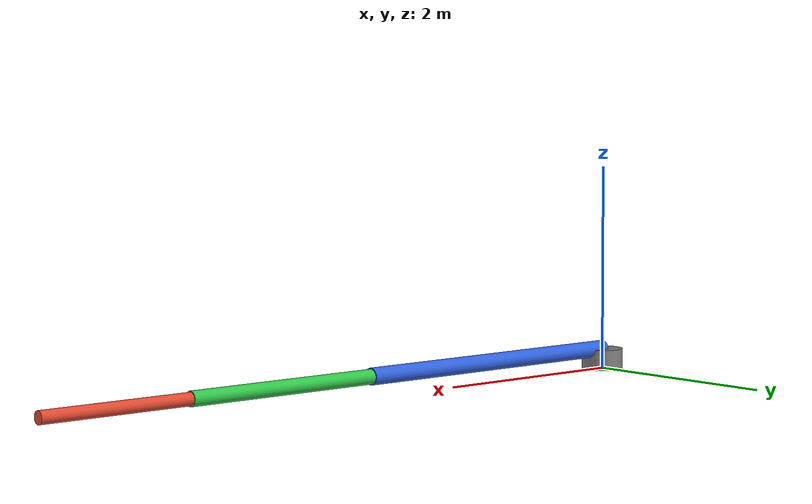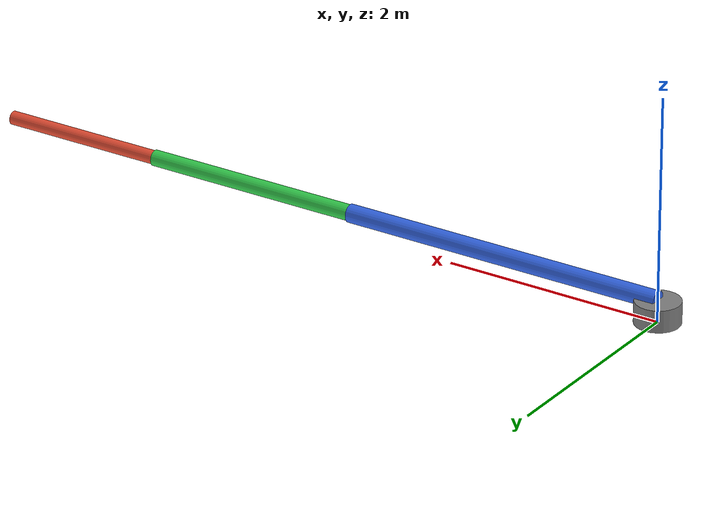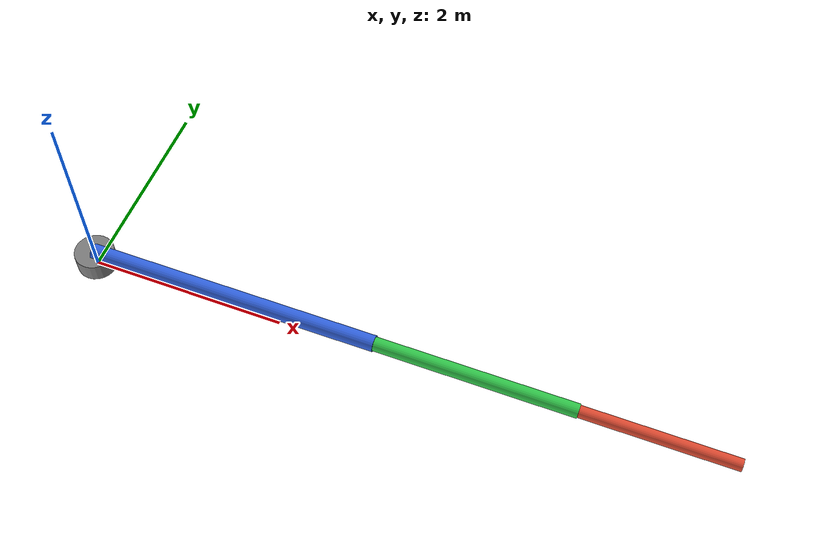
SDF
<?xml version="1.0"?>
<sdf version="1.9">
  <model name="planar_arm">
    <link name="base_link">
      <visual name="base_visual">
        <pose>0 0 0.1 0 0 0</pose>
        <geometry><cylinder><radius>0.2</radius><length>0.2</length></cylinder></geometry>
        <material>
          <ambient>0.5 0.5 0.5 1</ambient>
          <diffuse>0.5 0.5 0.5 1</diffuse>
        </material>
      </visual>
      <collision name="base_collision">
        <pose>0 0 0.1 0 0 0</pose>
        <geometry><cylinder><radius>0.2</radius><length>0.2</length></cylinder></geometry>
      </collision>
      <inertial>
        <mass>5.0</mass>
        <inertia><ixx>0.05</ixx><ixy>0</ixy><ixz>0</ixz><iyy>0.05</iyy><iyz>0</iyz><izz>0.05</izz></inertia>
      </inertial>
    </link>

    <joint name="base_to_world" type="fixed">
      <parent>world</parent>
      <child>base_link</child>
    </joint>

    <joint name="joint1" type="revolute">
      <parent>base_link</parent>
      <child>link1</child>
      <axis>
        <xyz>0 -1 0</xyz>
        <limit><lower>0.0</lower><upper>3.14159</upper><effort>460</effort><velocity>3.0</velocity></limit>
      </axis>
    </joint>

    <link name="link1">
      <pose>0 0 0.2 0 0 0</pose>
      <visual name="link1_visual">
        <pose>1.5 0 0 0 1.5708 0</pose>
        <geometry><cylinder><radius>0.08</radius><length>3.0</length></cylinder></geometry>
        <material>
          <ambient>0.2 0.4 0.9 1</ambient>
          <diffuse>0.2 0.4 0.9 1</diffuse>
        </material>
      </visual>
      <collision name="link1_collision">
        <pose>1.5 0 0 0 1.5708 0</pose>
        <geometry><cylinder><radius>0.08</radius><length>3.0</length></cylinder></geometry>
      </collision>
      <inertial>
        <pose>1.5 0 0 0 0 0</pose>
        <mass>2.0</mass>
        <inertia><ixx>0.05</ixx><ixy>0</ixy><ixz>0</ixz><iyy>1.5</iyy><iyz>0</iyz><izz>1.5</izz></inertia>
      </inertial>
    </link>

    <joint name="joint2" type="revolute">
      <parent>link1</parent>
      <child>link2</child>
      <axis>
        <xyz>0 -1 0</xyz>
        <limit><lower>-2.0944</lower><upper>2.0944</upper><effort>100</effort><velocity>3.0</velocity></limit>
      </axis>
    </joint>

    <link name="link2">
      <pose>3.0 0 0.2 0 0 0</pose>
      <visual name="link2_visual">
        <pose>1.0 0 0 0 1.5708 0</pose>
        <geometry><cylinder><radius>0.07</radius><length>2.0</length></cylinder></geometry>
        <material>
          <ambient>0.2 0.8 0.3 1</ambient>
          <diffuse>0.2 0.8 0.3 1</diffuse>
        </material>
      </visual>
      <collision name="link2_collision">
        <pose>1.0 0 0 0 1.5708 0</pose>
        <geometry><cylinder><radius>0.07</radius><length>2.0</length></cylinder></geometry>
      </collision>
      <inertial>
        <pose>1.0 0 0 0 0 0</pose>
        <mass>1.5</mass>
        <inertia><ixx>0.03</ixx><ixy>0</ixy><ixz>0</ixz><iyy>0.6</iyy><iyz>0</iyz><izz>0.6</izz></inertia>
      </inertial>
    </link>

    <joint name="joint3" type="revolute">
      <parent>link2</parent>
      <child>link3</child>
      <axis>
        <xyz>0 -1 0</xyz>
        <limit><lower>-2.0944</lower><upper>2.0944</upper><effort>100</effort><velocity>3.0</velocity></limit>
      </axis>
    </joint>

    <link name="link3">
      <pose>5.0 0 0.2 0 0 0</pose>
      <visual name="link3_visual">
        <pose>0.75 0 0 0 1.5708 0</pose>
        <geometry><cylinder><radius>0.06</radius><length>1.5</length></cylinder></geometry>
        <material>
          <ambient>0.9 0.3 0.2 1</ambient>
          <diffuse>0.9 0.3 0.2 1</diffuse>
        </material>
      </visual>
      <collision name="link3_collision">
        <pose>0.75 0 0 0 1.5708 0</pose>
        <geometry><cylinder><radius>0.06</radius><length>1.5</length></cylinder></geometry>
      </collision>
      <inertial>
        <pose>0.75 0 0 0 0 0</pose>
        <mass>1.0</mass>
        <inertia><ixx>0.02</ixx><ixy>0</ixy><ixz>0</ixz><iyy>0.2</iyy><iyz>0</iyz><izz>0.2</izz></inertia>
      </inertial>
    </link>

    <plugin filename="ignition-gazebo-joint-position-controller-system" name="ignition::gazebo::systems::JointPositionController">
      <joint_name>joint1</joint_name>
      <topic>/planar_arm/joint1_cmd</topic>
      <p_gain>300.0</p_gain>
      <i_gain>5.0</i_gain>
      <d_gain>277.0</d_gain>
      <i_max>50</i_max>
      <i_min>-50</i_min>
    </plugin>

    <plugin filename="ignition-gazebo-joint-position-controller-system" name="ignition::gazebo::systems::JointPositionController">
      <joint_name>joint2</joint_name>
      <topic>/planar_arm/joint2_cmd</topic>
      <p_gain>900.0</p_gain>
      <i_gain>40.0</i_gain>
      <d_gain>190.0</d_gain>
      <i_max>100</i_max>
      <i_min>-100</i_min>
    </plugin>

    <plugin filename="ignition-gazebo-joint-position-controller-system" name="ignition::gazebo::systems::JointPositionController">
      <joint_name>joint3</joint_name>
      <topic>/planar_arm/joint3_cmd</topic>
      <p_gain>300.0</p_gain>
      <i_gain>5.0</i_gain>
      <d_gain>30.0</d_gain>
      <i_max>50</i_max>
      <i_min>-50</i_min>
    </plugin>

    <plugin filename="ignition-gazebo-joint-state-publisher-system" name="ignition::gazebo::systems::JointStatePublisher">
      <joint_name>joint1</joint_name>
      <joint_name>joint2</joint_name>
      <joint_name>joint3</joint_name>
    </plugin>
  </model>
</sdf>
